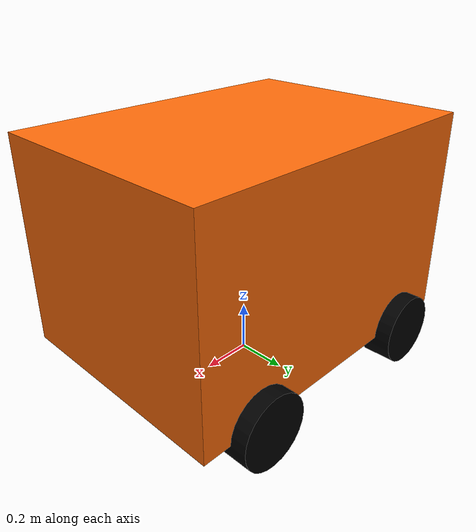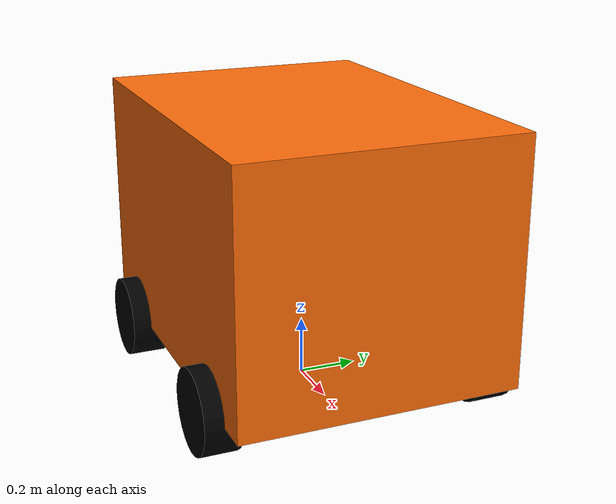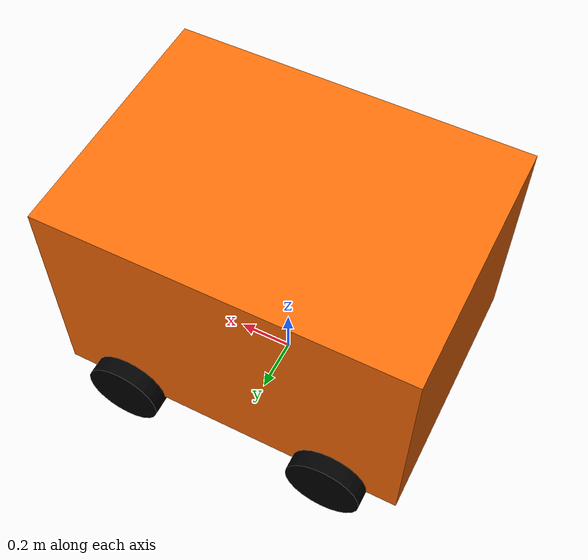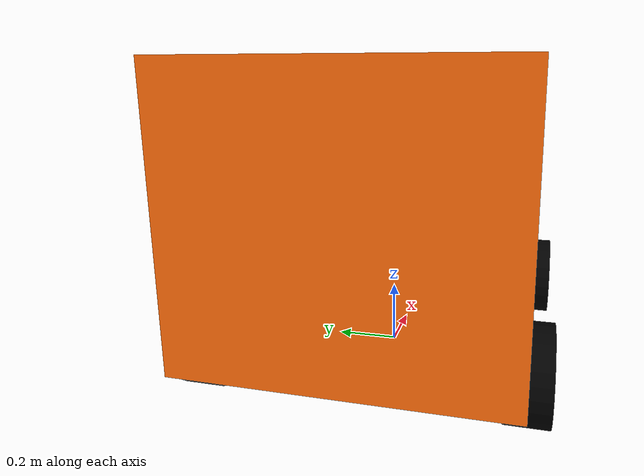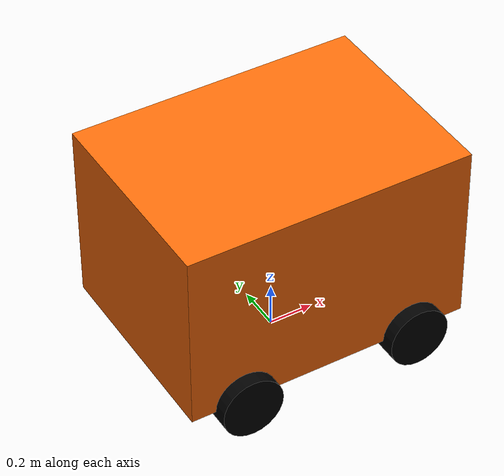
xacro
<?xml version="1.0"?>
<robot xmlns:xacro="http://www.ros.org/wiki/xacro" >
    <xacro:include filename="inertial_macros.xacro"/>
    <xacro:include filename="materials.xacro"/>

    <!-- Constants for robot dimensions -->
    <xacro:property name="PI" value="3.1415926535897931"/>
    <xacro:property name="base_mass" value="8.0" /> <!-- arbitrary value for base mass -->
    <xacro:property name="base_width" value="0.94" />
    <xacro:property name="base_length" value="1.3" />
    <xacro:property name="base_height" value="0.83" />
    <xacro:property name="wheelbase" value="0.8" />
    <xacro:property name="wheel_mass" value="0.34055" /> <!-- arbitrary value for wheel mass -->
    <xacro:property name="wheel_len" value="0.125" />
    <xacro:property name="wheel_radius" value="0.1397" />

    <!-- Base Link -->
    <link name="base_link" />

    <!-- Chassis -->

    <link name="chassis_link">
        <visual>
            <origin xyz="0 0 0" rpy="0 0 0"/>
            <geometry>
                <box size="${base_length} ${base_width} ${base_height}"/>
            </geometry>
            <material name="orange"/>
        </visual>
        <collision>
            <origin xyz="0 0 0" rpy="0 0 0"/>
            <geometry>
                <box size="${base_length} ${base_width} ${base_height}"/>
            </geometry>
        </collision>
        <inertial>
            <origin xyz="0 0 0" rpy="0 0 0"/>
            <mass value="${base_mass}"/>
            <inertia
                ixx="0.000270" ixy="0.0" ixz="0.0"
                iyy="0.000270" iyz="0.0"
                izz="0.000426"/>
        </inertial>
    </link>
    <gazebo reference="chassis_link">
        <material>Gazebo/Orange</material>
    </gazebo>

    <joint name="chassis_joint" type="fixed">
        <parent link="base_link"/>
        <child link="chassis_link"/>
        <origin xyz="0 0 ${base_height/2 + wheel_radius}" rpy="0 0 0"/>
        <axis xyz="0 0 1"/>
        <dynamics damping="0.2"/>
    </joint>

    <!-- rear wheels -->

    <!-- virtual rear wheel -->

    <!-- rear right wheel -->

    <link name="rear_right_wheel">
        <visual>
            <origin xyz="0 0 0" rpy="${PI/2} 0 ${PI/2}"/>
            <geometry>
                <cylinder length="${wheel_len}" radius="${wheel_radius}"/>
            </geometry>
            <material name="black"/>
        </visual>
        <collision>
            <origin xyz="0 0 0" rpy="${PI/2} 0 ${PI/2}"/>
            <geometry>
                <cylinder length="${wheel_len}" radius="${wheel_radius}"/>
            </geometry>
        </collision>
        <inertial>
            <origin xyz="0 0 0" rpy="${PI/2} 0 ${PI/2}"/>
            <mass value="${wheel_mass}"/>
            <inertia
                ixx="0.000270" ixy="0.0" ixz="0.0"
                iyy="0.000270" iyz="0.0"
                izz="0.000426"/>
        </inertial>
    </link>
    <gazebo reference="rear_right_wheel">
        <material>Gazebo/Black</material>
    </gazebo>

    <joint name="rear_right_wheel_joint" type="continuous">
        <parent link="chassis_link"/>
        <child link="rear_right_wheel"/>
        <origin xyz="-${wheelbase/2} ${base_width/2} -${base_height/2}" rpy="0 0 ${PI/2}"/>
        <axis xyz="1 0 0"/>
        <limit effort="100.0" velocity="100.0"/>
        <dynamics damping="0.2"/>
    </joint>

    <!-- rear left wheel -->
    <link name="rear_left_wheel">
        <visual>
            <origin xyz="0 0 0" rpy="${PI/2} 0 ${PI/2}"/>
            <geometry>
                <cylinder length="${wheel_len}" radius="${wheel_radius}"/>
            </geometry>
            <material name="black"/>
        </visual>
        <collision>
            <origin xyz="0 0 0" rpy="${PI/2} 0 ${PI/2}"/>
            <geometry>
                <cylinder length="${wheel_len}" radius="${wheel_radius}"/>
            </geometry>
        </collision>
        <inertial>
            <origin xyz="0 0 0" rpy="${PI/2} 0 ${PI/2}"/>
            <mass value="${wheel_mass}"/>
            <inertia
            ixx="0.000270" ixy="0.0" ixz="0.0"
            iyy="0.000270" iyz="0.0"
            izz="0.000426"/>
        </inertial>
    </link>
    <gazebo reference="rear_left_wheel">
        <material>Gazebo/Blue</material>
    </gazebo>

    <joint name="rear_left_wheel_joint" type="continuous">
        <parent link="chassis_link" />
        <child link="rear_left_wheel" />
        <origin xyz="-${wheelbase/2} -${base_width/2} -${base_height/2}" rpy="0 0 ${PI/2}"/>
        <axis xyz="1 0 0"/>
        <limit effort="100.0" velocity="100.0"/>
        <dynamics damping="0.2"/>
    </joint>

    <!-- front wheels -->

    <!-- virtual front wheel -->

    <!-- front right wheel -->

    <link name="front_right_wheel">
        <visual>
            <origin xyz="0 0 0" rpy="${PI/2} 0 ${PI/2}"/>
            <geometry>
                <cylinder length="${wheel_len}" radius="${wheel_radius}"/>
            </geometry>
            <material name="black"/>
        </visual>
        <collision>
            <origin xyz="0 0 0" rpy="${PI/2} 0 ${PI/2}"/>
            <geometry>
                <cylinder length="${wheel_len}" radius="${wheel_radius}"/>
            </geometry>
        </collision>
        <inertial>
            <origin xyz="0 0 0" rpy="${PI/2} 0 ${PI/2}"/>
            <mass value="${wheel_mass}"/>
            <inertia
                ixx="0.000270" ixy="0.0" ixz="0.0"
                iyy="0.000270" iyz="0.0"
                izz="0.000426"/>
        </inertial>
    </link>
    <gazebo reference="front_right_wheel">
        <material>Gazebo/Blue</material>
    </gazebo>

    <joint name="front_right_steering_joint" type="revolute">
        <parent link="chassis_link" />
        <child link="front_right_wheel" />
        <origin xyz="${wheelbase/2} ${base_width/2} -${base_height/2}" rpy="0 0 ${PI/2}"/>
        <axis xyz="1 0 1"/>
        <limit lower="-0.4" upper="0.4" effort="100.0" velocity="0.0"/>
        <dynamics damping="0.2"/>
    </joint>

    <!-- front right steering -->

    <!-- front left steering -->

    <link name="front_left_wheel">
        <visual>
            <origin xyz="0 0 0" rpy="${PI/2} 0 ${PI/2}"/>
            <geometry>
                <cylinder length="${wheel_len}" radius="${wheel_radius}"/>
            </geometry>
            <material name="black"/>
        </visual>
        <collision>
            <origin xyz="0 0 0" rpy="${PI/2} 0 ${PI/2}"/>
            <geometry>
                <cylinder length="${wheel_len}" radius="${wheel_radius}"/>
            </geometry>
        </collision>
        <inertial>
            <origin xyz="0 0 0" rpy="${PI/2} 0 ${PI/2}"/>
            <mass value="${wheel_mass}"/>
            <inertia
                ixx="0.000270" ixy="0.0" ixz="0.0"
                iyy="0.000270" iyz="0.0"
                izz="0.000426"/>
        </inertial>

    </link>
    <gazebo reference="front_left_wheel">
        <material>Gazebo/Blue</material>
    </gazebo>

    <joint name="front_left_steering_joint" type="revolute">
        <parent link="chassis_link" />
        <child link="front_left_wheel" />
        <origin xyz="${wheelbase/2} -${base_width/2} -${base_height/2}" rpy="0 0 ${PI/2}"/>
        <axis xyz="0 0 1"/>
        <limit lower="-0.4" upper="0.4" effort="100.0" velocity="0.0"/>
        <dynamics damping="0.2"/>
    </joint>

</robot>

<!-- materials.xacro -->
<!--
Copied from ROS1 example:
https://github.com/ros-simulation/gazebo_ros_demos/blob/kinetic-devel/rrbot_description/urdf/materials.xacro
-->
<robot>
    <material name="black">
        <color rgba="0.0 0.0 0.0 1.0"/>
    </material>

    <material name="blue">
        <color rgba="0.0 0.0 0.8 1.0"/>
    </material>

    <material name="green">
        <color rgba="0.0 0.8 0.0 1.0"/>
    </material>

    <material name="grey">
        <color rgba="0.2 0.2 0.2 1.0"/>
    </material>

    <material name="orange">
        <color rgba="${255/255} ${108/255} ${10/255} 1.0"/>
    </material>

    <material name="brown">
        <color rgba="${222/255} ${207/255} ${195/255} 1.0"/>
    </material>

    <material name="red">
        <color rgba="0.8 0.0 0.0 1.0"/>
    </material>

    <material name="white">
        <color rgba="1.0 1.0 1.0 1.0"/>
    </material>

    <material name="invisible">
        <color rgba="0.0 0.0 0.0 0.0"/>
    </material>

    <material name="yellow">
        <color rgba="0.8 0.8 0 1"/>
    </material>

    <material name="dark_gray">
        <color rgba="0.5 0.5 0.5 1"/>
    </material>

    <material name="silver">
        <color rgba="0.88 0.88 0.88 1"/>
    </material>

</robot>
